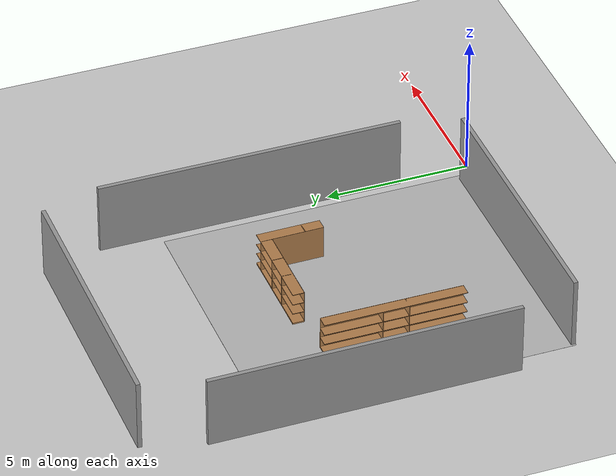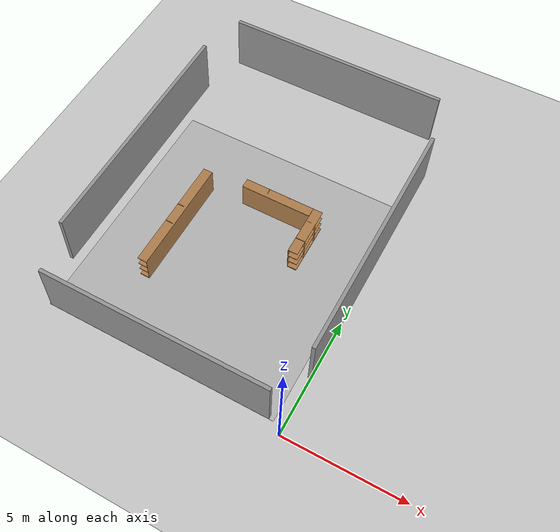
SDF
<sdf version="1.6">
 <world name="default">
  <light name="sun" type="directional">
   <cast_shadows>0</cast_shadows>
   <pose>0 0 10 0 -0 0</pose>
   <diffuse>0.8 0.8 0.8 1</diffuse>
   <specular>0.2 0.2 0.2 1</specular>
   <attenuation>
    <range>1000</range>
    <constant>0.9</constant>
    <linear>0.01</linear>
    <quadratic>0.001</quadratic>
   </attenuation>
   <direction>-0.5 0.1 -0.9</direction>
   <spot><inner_angle>0</inner_angle><outer_angle>0</outer_angle><falloff>0</falloff></spot>
  </light>
  <model name="ground_plane">
   <static>1</static>
   <link name="link">
    <collision name="collision">
     <geometry><plane><normal>0 0 1</normal><size>100 100</size></plane></geometry>
     <surface><friction><ode><mu>100</mu><mu2>50</mu2></ode></friction></surface>
    </collision>
    <visual name="visual">
     <cast_shadows>0</cast_shadows>
     <geometry><plane><normal>0 0 1</normal><size>100 100</size></plane></geometry>
     <material>
      <script><uri>file://media/materials/scripts/gazebo.material</uri><name>Gazebo/Grey</name></script>
     </material>
    </visual>
   </link>
  </model>
  <gravity>0 0 -9.8</gravity>
  <magnetic_field>6e-06 2.3e-05 -4.2e-05</magnetic_field>
  <atmosphere type="adiabatic"/>
  <physics name="default_physics" default="0" type="ode">
   <max_step_size>0.001</max_step_size>
   <real_time_factor>1</real_time_factor>
   <real_time_update_rate>1000</real_time_update_rate>
  </physics>
  <scene><ambient>0.4 0.4 0.4 1</ambient><background>0.7 0.7 0.7 1</background><shadows>1</shadows></scene>
  <audio><device>default</device></audio>
  <spherical_coordinates>
   <surface_model>EARTH_WGS84</surface_model>
   <latitude_deg>0</latitude_deg>
   <longitude_deg>0</longitude_deg>
   <elevation>0</elevation>
   <heading_deg>0</heading_deg>
  </spherical_coordinates>
  <model name="walls">
   <pose>-5.34 7.72 0 0 -0 0</pose>
   <link name="wall_1">
    <collision name="wall_1_Collision">
     <geometry><box><size>9.5 0.15 2.5</size></box></geometry>
     <pose>0 0 1.25 0 -0 0</pose>
    </collision>
    <visual name="wall_1_Visual">
     <pose>0 0 1.25 0 -0 0</pose>
     <geometry><box><size>9.5 0.15 2.5</size></box></geometry>
     <material>
      <script><uri>file://media/materials/scripts/gazebo.material</uri><name>Gazebo/Grey</name></script>
      <ambient>1 1 1 1</ambient>
     </material>
     <meta><layer>0</layer></meta>
    </visual>
    <pose>0 -7.3 0 0 -0 0</pose>
   </link>
   <link name="wall_2">
    <collision name="wall_2_Collision">
     <geometry><box><size>10.55 0.15 2.5</size></box></geometry>
     <pose>0 0 1.25 0 -0 0</pose>
    </collision>
    <visual name="wall_2_Visual">
     <pose>0 0 1.25 0 -0 0</pose>
     <geometry><box><size>10.55 0.15 2.5</size></box></geometry>
     <material>
      <script><uri>file://media/materials/scripts/gazebo.material</uri><name>Gazebo/Grey</name></script>
      <ambient>1 1 1 1</ambient>
     </material>
     <meta><layer>0</layer></meta>
    </visual>
    <pose>5.3 0 0 0 -0 1.5708</pose>
   </link>
   <link name="wall_3">
    <collision name="wall_3_Collision">
     <geometry><box><size>9.5 0.15 2.5</size></box></geometry>
     <pose>0 0 1.25 0 -0 0</pose>
    </collision>
    <visual name="wall_3_Visual">
     <pose>0 0 1.25 0 -0 0</pose>
     <geometry><box><size>9.5 0.15 2.5</size></box></geometry>
     <material>
      <script><uri>file://media/materials/scripts/gazebo.material</uri><name>Gazebo/Grey</name></script>
      <ambient>1 1 1 1</ambient>
     </material>
     <meta><layer>0</layer></meta>
    </visual>
    <pose>0 7.3 0 0 -0 3.14159</pose>
   </link>
   <link name="wall_4">
    <collision name="wall_4_Collision">
     <geometry><box><size>10.55 0.15 2.5</size></box></geometry>
     <pose>0 0 1.25 0 -0 0</pose>
    </collision>
    <visual name="wall_4_Visual">
     <pose>0 0 1.25 0 -0 0</pose>
     <geometry><box><size>10.55 0.15 2.5</size></box></geometry>
     <material>
      <script><uri>file://media/materials/scripts/gazebo.material</uri><name>Gazebo/Grey</name></script>
      <ambient>1 1 1 1</ambient>
     </material>
     <meta><layer>0</layer></meta>
    </visual>
    <pose>-5.3 0 0 0 -0 -1.5708</pose>
   </link>
   <static>1</static>
  </model>
  <model name="bookshelf_1">
   <static>1</static>
   <link name="link">
    <inertial><mass>1</mass></inertial>
    <collision name="back">
     <pose>0 0.005 0.6 0 -0 0</pose>
     <geometry><box><size>4.9 0.01 1.2</size></box></geometry>
    </collision>
    <visual name="visual1">
     <pose>0 0.005 0.6 0 -0 0</pose>
     <geometry><box><size>4.9 0.01 1.2</size></box></geometry>
     <material>
      <script><uri>file://media/materials/scripts/gazebo.material</uri><name>Gazebo/Wood</name></script>
     </material>
    </visual>
    <collision name="left_side">
     <pose>0.45 -0.195 0.6 0 -0 0</pose>
     <geometry><box><size>0.02 0.4 1.2</size></box></geometry>
    </collision>
    <visual name="visual2">
     <pose>0.45 -0.195 0.6 0 -0 0</pose>
     <geometry><box><size>0.02 0.4 1.2</size></box></geometry>
     <material>
      <script><uri>file://media/materials/scripts/gazebo.material</uri><name>Gazebo/Wood</name></script>
     </material>
    </visual>
    <collision name="right_side">
     <pose>-0.45 -0.195 0.6 0 -0 0</pose>
     <geometry><box><size>0.02 0.4 1.2</size></box></geometry>
    </collision>
    <visual name="visual3">
     <pose>-0.45 -0.195 0.6 0 -0 0</pose>
     <geometry><box><size>0.02 0.4 1.2</size></box></geometry>
     <material>
      <script><uri>file://media/materials/scripts/gazebo.material</uri><name>Gazebo/Wood</name></script>
     </material>
    </visual>
    <collision name="bottom">
     <pose>0 -0.195 0.03 0 -0 0</pose>
     <geometry><box><size>4.9 0.4 0.06</size></box></geometry>
    </collision>
    <visual name="visual4">
     <pose>0 -0.195 0.03 0 -0 0</pose>
     <geometry><box><size>4.9 0.4 0.06</size></box></geometry>
     <material>
      <script><uri>file://media/materials/scripts/gazebo.material</uri><name>Gazebo/Wood</name></script>
     </material>
    </visual>
    <collision name="top">
     <pose>0 -0.195 1.19 0 -0 0</pose>
     <geometry><box><size>4.9 0.4 0.02</size></box></geometry>
    </collision>
    <visual name="visual5">
     <pose>0 -0.195 1.19 0 -0 0</pose>
     <geometry><box><size>4.9 0.4 0.02</size></box></geometry>
     <material>
      <script><uri>file://media/materials/scripts/gazebo.material</uri><name>Gazebo/Wood</name></script>
     </material>
    </visual>
    <collision name="low_shelf">
     <pose>0 -0.195 0.43 0 -0 0</pose>
     <geometry><box><size>4.9 0.4 0.02</size></box></geometry>
    </collision>
    <visual name="visual6">
     <pose>0 -0.195 0.43 0 -0 0</pose>
     <geometry><box><size>4.9 0.4 0.02</size></box></geometry>
     <material>
      <script><uri>file://media/materials/scripts/gazebo.material</uri><name>Gazebo/Wood</name></script>
     </material>
    </visual>
    <collision name="high_shelf">
     <pose>0 -0.195 0.8 0 -0 0</pose>
     <geometry><box><size>4.9 0.4 0.02</size></box></geometry>
    </collision>
    <visual name="visual7">
     <pose>0 -0.195 0.8 0 -0 0</pose>
     <geometry><box><size>4.9 0.4 0.02</size></box></geometry>
     <material>
      <script><uri>file://media/materials/scripts/gazebo.material</uri><name>Gazebo/Wood</name></script>
     </material>
    </visual>
   </link>
   <pose>-7.42906 5.59882 0 0 0 -1.57461</pose>
  </model>
  <model name="bookshelf_2">
   <static>1</static>
   <link name="link">
    <inertial><mass>1</mass></inertial>
    <collision name="back">
     <pose>0 0.005 0.6 0 -0 0</pose>
     <geometry><box><size>3 0.01 1.2</size></box></geometry>
    </collision>
    <visual name="visual1">
     <pose>0 0.005 0.6 0 -0 0</pose>
     <geometry><box><size>3 0.01 1.2</size></box></geometry>
     <material>
      <script><uri>file://media/materials/scripts/gazebo.material</uri><name>Gazebo/Wood</name></script>
     </material>
    </visual>
    <collision name="left_side">
     <pose>0.45 -0.195 0.6 0 -0 0</pose>
     <geometry><box><size>0.02 0.4 1.2</size></box></geometry>
    </collision>
    <visual name="visual2">
     <pose>0.45 -0.195 0.6 0 -0 0</pose>
     <geometry><box><size>0.02 0.4 1.2</size></box></geometry>
     <material>
      <script><uri>file://media/materials/scripts/gazebo.material</uri><name>Gazebo/Wood</name></script>
     </material>
    </visual>
    <collision name="right_side">
     <pose>-0.45 -0.195 0.6 0 -0 0</pose>
     <geometry><box><size>0.02 0.4 1.2</size></box></geometry>
    </collision>
    <visual name="visual3">
     <pose>-0.45 -0.195 0.6 0 -0 0</pose>
     <geometry><box><size>0.02 0.4 1.2</size></box></geometry>
     <material>
      <script><uri>file://media/materials/scripts/gazebo.material</uri><name>Gazebo/Wood</name></script>
     </material>
    </visual>
    <collision name="bottom">
     <pose>0 -0.195 0.03 0 -0 0</pose>
     <geometry><box><size>3 0.4 0.06</size></box></geometry>
    </collision>
    <visual name="visual4">
     <pose>0 -0.195 0.03 0 -0 0</pose>
     <geometry><box><size>3 0.4 0.06</size></box></geometry>
     <material>
      <script><uri>file://media/materials/scripts/gazebo.material</uri><name>Gazebo/Wood</name></script>
     </material>
    </visual>
    <collision name="top">
     <pose>0 -0.195 1.19 0 -0 0</pose>
     <geometry><box><size>0.88 0.4 0.02</size></box></geometry>
    </collision>
    <visual name="visual5">
     <pose>0 -0.195 1.19 0 -0 0</pose>
     <geometry><box><size>3 0.4 0.02</size></box></geometry>
     <material>
      <script><uri>file://media/materials/scripts/gazebo.material</uri><name>Gazebo/Wood</name></script>
     </material>
    </visual>
    <collision name="low_shelf">
     <pose>0 -0.195 0.43 0 -0 0</pose>
     <geometry><box><size>3 0.4 0.02</size></box></geometry>
    </collision>
    <visual name="visual6">
     <pose>0 -0.195 0.43 0 -0 0</pose>
     <geometry><box><size>3 0.4 0.02</size></box></geometry>
     <material>
      <script><uri>file://media/materials/scripts/gazebo.material</uri><name>Gazebo/Wood</name></script>
     </material>
    </visual>
    <collision name="high_shelf">
     <pose>0 -0.195 0.8 0 -0 0</pose>
     <geometry><box><size>3 0.4 0.02</size></box></geometry>
    </collision>
    <visual name="visual7">
     <pose>0 -0.195 0.8 0 -0 0</pose>
     <geometry><box><size>3 0.4 0.02</size></box></geometry>
     <material>
      <script><uri>file://media/materials/scripts/gazebo.material</uri><name>Gazebo/Wood</name></script>
     </material>
    </visual>
   </link>
   <pose>-4.50428 8.05302 0 0 -0 3.14058</pose>
  </model>
  <model name="bookshelf_3">
   <static>1</static>
   <link name="link">
    <inertial><mass>1</mass></inertial>
    <collision name="back">
     <pose>0 0.005 0.6 0 -0 0</pose>
     <geometry><box><size>2.2 0.01 1.2</size></box></geometry>
    </collision>
    <visual name="visual1">
     <pose>0 0.005 0.6 0 -0 0</pose>
     <geometry><box><size>2.2 0.01 1.2</size></box></geometry>
     <material>
      <script><uri>file://media/materials/scripts/gazebo.material</uri><name>Gazebo/Wood</name></script>
     </material>
    </visual>
    <collision name="left_side">
     <pose>0.45 -0.195 0.6 0 -0 0</pose>
     <geometry><box><size>0.02 0.4 1.2</size></box></geometry>
    </collision>
    <visual name="visual2">
     <pose>0.45 -0.195 0.6 0 -0 0</pose>
     <geometry><box><size>0.02 0.4 1.2</size></box></geometry>
     <material>
      <script><uri>file://media/materials/scripts/gazebo.material</uri><name>Gazebo/Wood</name></script>
     </material>
    </visual>
    <collision name="right_side">
     <pose>-0.45 -0.195 0.6 0 -0 0</pose>
     <geometry><box><size>0.02 0.4 1.2</size></box></geometry>
    </collision>
    <visual name="visual3">
     <pose>-0.45 -0.195 0.6 0 -0 0</pose>
     <geometry><box><size>0.02 0.4 1.2</size></box></geometry>
     <material>
      <script><uri>file://media/materials/scripts/gazebo.material</uri><name>Gazebo/Wood</name></script>
     </material>
    </visual>
    <collision name="bottom">
     <pose>0 -0.195 0.03 0 -0 0</pose>
     <geometry><box><size>2.2 0.4 0.06</size></box></geometry>
    </collision>
    <visual name="visual4">
     <pose>0 -0.195 0.03 0 -0 0</pose>
     <geometry><box><size>2.2 0.4 0.06</size></box></geometry>
     <material>
      <script><uri>file://media/materials/scripts/gazebo.material</uri><name>Gazebo/Wood</name></script>
     </material>
    </visual>
    <collision name="top">
     <pose>0 -0.195 1.19 0 -0 0</pose>
     <geometry><box><size>2.2 0.4 0.02</size></box></geometry>
    </collision>
    <visual name="visual5">
     <pose>0 -0.195 1.19 0 -0 0</pose>
     <geometry><box><size>2.2 0.4 0.02</size></box></geometry>
     <material>
      <script><uri>file://media/materials/scripts/gazebo.material</uri><name>Gazebo/Wood</name></script>
     </material>
    </visual>
    <collision name="low_shelf">
     <pose>0 -0.195 0.43 0 -0 0</pose>
     <geometry><box><size>2.2 0.4 0.02</size></box></geometry>
    </collision>
    <visual name="visual6">
     <pose>0 -0.195 0.43 0 -0 0</pose>
     <geometry><box><size>2.2 0.4 0.02</size></box></geometry>
     <material>
      <script><uri>file://media/materials/scripts/gazebo.material</uri><name>Gazebo/Wood</name></script>
     </material>
    </visual>
    <collision name="high_shelf">
     <pose>0 -0.195 0.8 0 -0 0</pose>
     <geometry><box><size>2.2 0.4 0.02</size></box></geometry>
    </collision>
    <visual name="visual7">
     <pose>0 -0.195 0.8 0 -0 0</pose>
     <geometry><box><size>2.2 0.4 0.02</size></box></geometry>
     <material>
      <script><uri>file://media/materials/scripts/gazebo.material</uri><name>Gazebo/Wood</name></script>
     </material>
    </visual>
   </link>
   <pose>-2.9837 7.34798 0 0 -0 1.57824</pose>
  </model>
  <model name="floor">
   <link name="main">
    <pose>0 0 0.01 0 -0 0</pose>
    <collision name="main_Collision"><geometry><box><size>9.75 10.55 0.001</size></box></geometry></collision>
    <visual name="main_Visual">
     <geometry><box><size>9.75 10.55 0.001</size></box></geometry>
     <material>
      <script>
       <uri>model://Floor_room/materials/scripts</uri>
       <uri>model://Floor_room/materials/textures</uri>
       <name>floor_room</name>
      </script>
     </material>
    </visual>
   </link>
   <static>1</static>
   <pose>-5.28446 5.61667 0 0 -0 0</pose>
  </model>
 </world>
</sdf>
